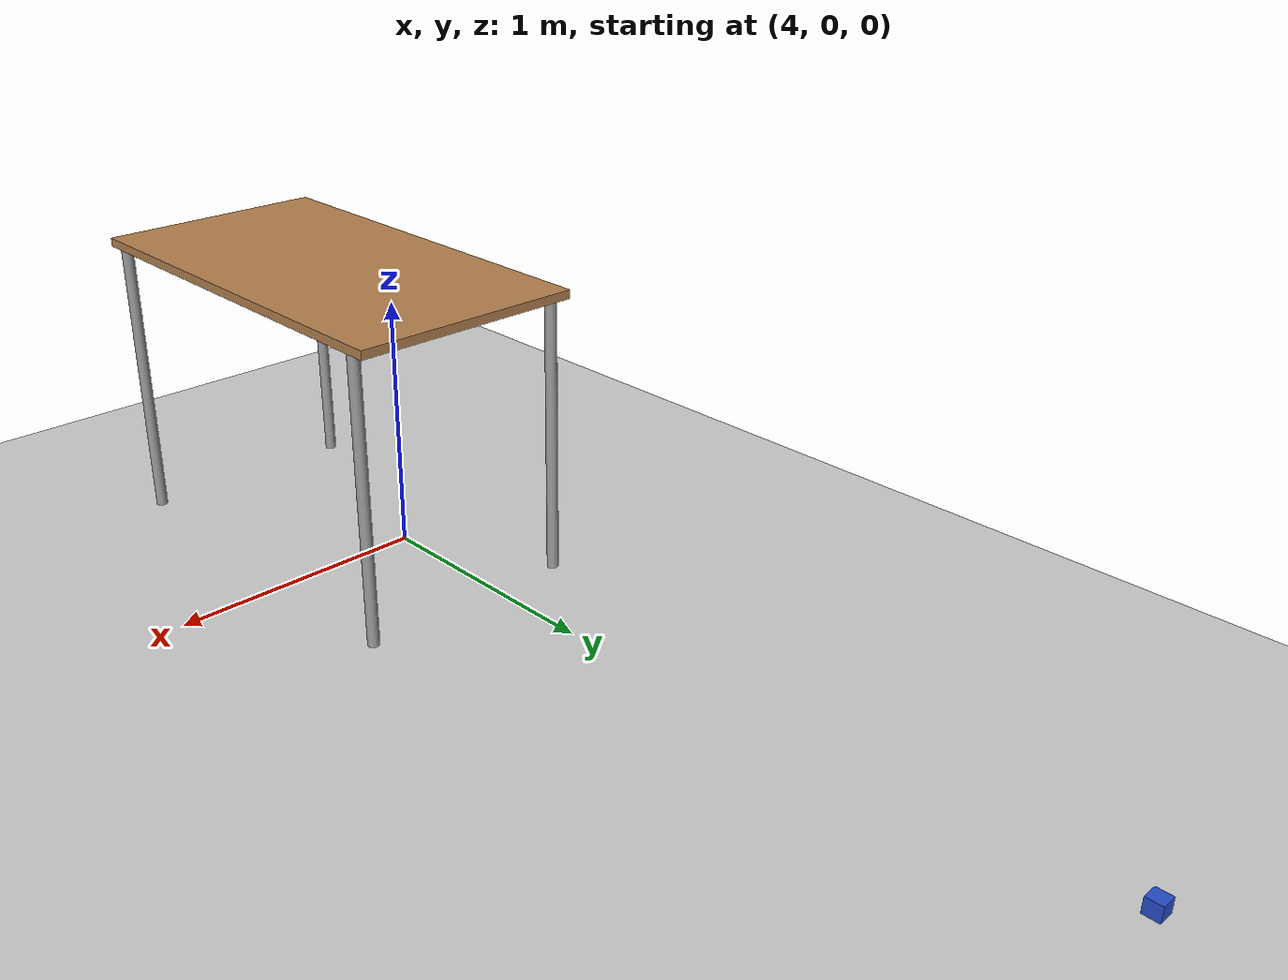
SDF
<sdf version="1.4">
 <world name="default">
  <model name="ground_plane">
   <static>1</static>
   <link name="link">
    <collision name="collision">
     <geometry><plane><normal>0 0 1</normal><size>100 100</size></plane></geometry>
     <surface><friction><ode><mu>100</mu><mu2>50</mu2></ode></friction></surface>
    </collision>
    <visual name="visual">
     <cast_shadows>0</cast_shadows>
     <geometry><plane><normal>0 0 1</normal><size>100 100</size></plane></geometry>
     <material>
      <script><uri>file://media/materials/scripts/gazebo.material</uri><name>Gazebo/Grey</name></script>
     </material>
    </visual>
    <velocity_decay><linear>0</linear><angular>0</angular></velocity_decay>
   </link>
  </model>
  <light name="sun" type="directional">
   <pose>0 0 10 0 -0 0</pose>
   <diffuse>0.8 0.8 0.8 1</diffuse>
   <specular>0.2 0.2 0.2 1</specular>
   <attenuation>
    <range>1000</range>
    <constant>0.9</constant>
    <linear>0.01</linear>
    <quadratic>0.001</quadratic>
   </attenuation>
   <direction>-0.5 0.1 -0.9</direction>
  </light>
  <model name="demo_cube">
   <static>0</static>
   <link name="link">
    <inertial>
     <mass>0.25</mass>
     <inertia><ixx>0.001</ixx><ixy>0</ixy><ixz>0</ixz><iyy>0.001</iyy><iyz>0</iyz><izz>0.001</izz></inertia>
    </inertial>
    <collision name="collision">
     <geometry><box><size>0.06 0.06 0.06</size></box></geometry>
     <surface>
      <friction><ode><mu>30</mu><mu2>30</mu2></ode></friction>
      <contact><ode><kp>1e+06</kp><kd>100</kd><max_vel>1</max_vel><min_depth>0.002</min_depth></ode></contact>
     </surface>
    </collision>
    <visual name="visual">
     <geometry><box><size>0.06 0.06 0.06</size></box></geometry>
     <material>
      <script><uri>file://media/materials/scripts/gazebo.material</uri><name>Gazebo/Blue</name></script>
     </material>
    </visual>
    <velocity_decay><linear>0</linear><angular>0</angular></velocity_decay>
   </link>
   <pose>3.8 3.15 0.027999 0 -0 0</pose>
  </model>
  <physics type="ode">
   <max_step_size>0.001</max_step_size>
   <real_time_factor>1</real_time_factor>
   <real_time_update_rate>1000</real_time_update_rate>
   <gravity>0 0 -9.8</gravity>
  </physics>
  <scene><ambient>0.4 0.4 0.4 1</ambient><background>0.7 0.7 0.7 1</background><shadows>1</shadows></scene>
  <spherical_coordinates>
   <surface_model>EARTH_WGS84</surface_model>
   <latitude_deg>0</latitude_deg>
   <longitude_deg>0</longitude_deg>
   <elevation>0</elevation>
   <heading_deg>0</heading_deg>
  </spherical_coordinates>
  <model name="table">
   <static>1</static>
   <link name="link">
    <collision name="surface">
     <pose>0 0 1 0 -0 0</pose>
     <geometry><box><size>1.5 0.8 0.03</size></box></geometry>
     <surface><friction><ode><mu>0.6</mu><mu2>0.6</mu2></ode></friction></surface>
    </collision>
    <visual name="visual1">
     <pose>0 0 1 0 -0 0</pose>
     <geometry><box><size>1.5 0.8 0.03</size></box></geometry>
     <material>
      <script><uri>file://media/materials/scripts/gazebo.material</uri><name>Gazebo/Wood</name></script>
     </material>
    </visual>
    <collision name="front_left_leg">
     <pose>0.68 0.38 0.5 0 -0 0</pose>
     <geometry><cylinder><radius>0.02</radius><length>1</length></cylinder></geometry>
    </collision>
    <visual name="front_left_leg">
     <pose>0.68 0.38 0.5 0 -0 0</pose>
     <geometry><cylinder><radius>0.02</radius><length>1</length></cylinder></geometry>
     <material>
      <script><uri>file://media/materials/scripts/gazebo.material</uri><name>Gazebo/Grey</name></script>
     </material>
    </visual>
    <collision name="front_right_leg">
     <pose>0.68 -0.38 0.5 0 -0 0</pose>
     <geometry><cylinder><radius>0.02</radius><length>1</length></cylinder></geometry>
    </collision>
    <visual name="front_right_leg">
     <pose>0.68 -0.38 0.5 0 -0 0</pose>
     <geometry><cylinder><radius>0.02</radius><length>1</length></cylinder></geometry>
     <material>
      <script><uri>file://media/materials/scripts/gazebo.material</uri><name>Gazebo/Grey</name></script>
     </material>
    </visual>
    <collision name="back_right_leg">
     <pose>-0.68 -0.38 0.5 0 -0 0</pose>
     <geometry><cylinder><radius>0.02</radius><length>1</length></cylinder></geometry>
    </collision>
    <visual name="back_right_leg">
     <pose>-0.68 -0.38 0.5 0 -0 0</pose>
     <geometry><cylinder><radius>0.02</radius><length>1</length></cylinder></geometry>
     <material>
      <script><uri>file://media/materials/scripts/gazebo.material</uri><name>Gazebo/Grey</name></script>
     </material>
    </visual>
    <collision name="back_left_leg">
     <pose>-0.68 0.38 0.5 0 -0 0</pose>
     <geometry><cylinder><radius>0.02</radius><length>1</length></cylinder></geometry>
    </collision>
    <visual name="back_left_leg">
     <pose>-0.68 0.38 0.5 0 -0 0</pose>
     <geometry><cylinder><radius>0.02</radius><length>1</length></cylinder></geometry>
     <material>
      <script><uri>file://media/materials/scripts/gazebo.material</uri><name>Gazebo/Grey</name></script>
     </material>
    </visual>
    <velocity_decay><linear>0</linear><angular>0</angular></velocity_decay>
   </link>
   <pose>4.46622 0.317503 0.315857 0 -0 1.56919</pose>
  </model>
 </world>
</sdf>
